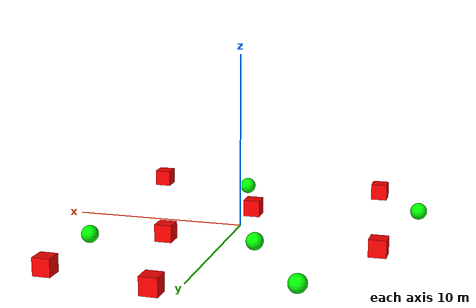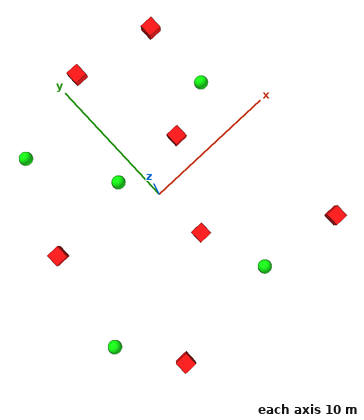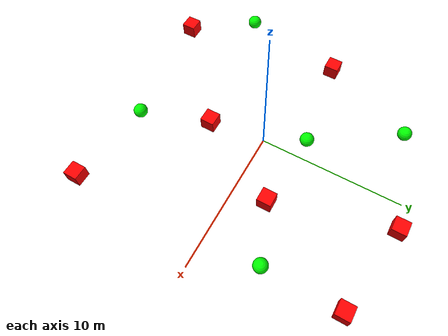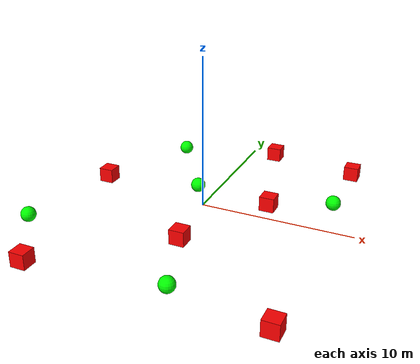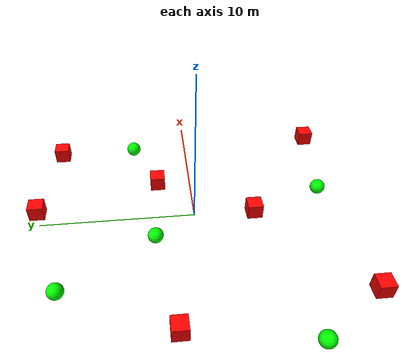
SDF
<?xml version='1.0'?>
<sdf version='1.7'>
  <model name='obastacle'>
    <link name='link_0'>
      <inertial>
        <mass>1</mass>
        <inertia>
          <ixx>0.166667</ixx>
          <ixy>0</ixy>
          <ixz>0</ixz>
          <iyy>0.166667</iyy>
          <iyz>0</iyz>
          <izz>0.166667</izz>
        </inertia>
        <pose>0 0 0 0 -0 0</pose>
      </inertial>
      <pose>7.79193 9.30187 0 0 -0 0</pose>
      <gravity>1</gravity>
      <self_collide>0</self_collide>
      <kinematic>0</kinematic>
      <enable_wind>0</enable_wind>
      <visual name='visual'>
        <pose>0 0 0 0 -0 0</pose>
        <geometry>
          <box>
            <size>1 1 1</size>
          </box>
        </geometry>
        <material>
          <lighting>1</lighting>
          <script>
            <uri>file://media/materials/scripts/gazebo.material</uri>
            <name>Gazebo/Grey</name>
          </script>
          <shader type='pixel'>
            <normal_map>__default__</normal_map>
          </shader>
          <ambient>1 0 0 0</ambient>
          <diffuse>0.7 0.7 0.7 1</diffuse>
          <specular>0.01 0.01 0.01 1</specular>
          <emissive>0 0 0 1</emissive>
        </material>
        <transparency>0</transparency>
        <cast_shadows>1</cast_shadows>
      </visual>
      <collision name='collision'>
        <laser_retro>0</laser_retro>
        <max_contacts>10</max_contacts>
        <pose>0 0 0 0 -0 0</pose>
        <geometry>
          <box>
            <size>1 1 1</size>
          </box>
        </geometry>
        <surface>
          <friction>
            <ode>
              <mu>1</mu>
              <mu2>1</mu2>
              <fdir1>0 0 0</fdir1>
              <slip1>0</slip1>
              <slip2>0</slip2>
            </ode>
            <torsional>
              <coefficient>1</coefficient>
              <patch_radius>0</patch_radius>
              <surface_radius>0</surface_radius>
              <use_patch_radius>1</use_patch_radius>
              <ode>
                <slip>0</slip>
              </ode>
            </torsional>
          </friction>
          <bounce>
            <restitution_coefficient>0</restitution_coefficient>
            <threshold>1e+06</threshold>
          </bounce>
          <contact>
            <collide_without_contact>0</collide_without_contact>
            <collide_without_contact_bitmask>1</collide_without_contact_bitmask>
            <collide_bitmask>1</collide_bitmask>
            <ode>
              <soft_cfm>0</soft_cfm>
              <soft_erp>0.2</soft_erp>
              <kp>1e+13</kp>
              <kd>1</kd>
              <max_vel>0.01</max_vel>
              <min_depth>0</min_depth>
            </ode>
            <bullet>
              <split_impulse>1</split_impulse>
              <split_impulse_penetration_threshold>-0.01</split_impulse_penetration_threshold>
              <soft_cfm>0</soft_cfm>
              <soft_erp>0.2</soft_erp>
              <kp>1e+13</kp>
              <kd>1</kd>
            </bullet>
          </contact>
        </surface>
      </collision>
    </link>
    <link name='link_0_clone'>
      <inertial>
        <mass>1</mass>
        <inertia>
          <ixx>0.166667</ixx>
          <ixy>0</ixy>
          <ixz>0</ixz>
          <iyy>0.166667</iyy>
          <iyz>0</iyz>
          <izz>0.166667</izz>
        </inertia>
        <pose>0 0 0 0 -0 0</pose>
      </inertial>
      <pose>1.53918 10.4076 0 0 -0 0</pose>
      <gravity>1</gravity>
      <self_collide>0</self_collide>
      <kinematic>0</kinematic>
      <enable_wind>0</enable_wind>
      <visual name='visual'>
        <pose>0 0 0 0 -0 0</pose>
        <geometry>
          <box>
            <size>1 1 1</size>
          </box>
        </geometry>
        <material>
          <lighting>1</lighting>
          <script>
            <uri>file://media/materials/scripts/gazebo.material</uri>
            <name>Gazebo/Grey</name>
          </script>
          <shader type='pixel'>
            <normal_map>__default__</normal_map>
          </shader>
          <ambient>1 0 0 0</ambient>
          <diffuse>0.7 0.7 0.7 1</diffuse>
          <specular>0.01 0.01 0.01 1</specular>
          <emissive>0 0 0 1</emissive>
        </material>
        <transparency>0</transparency>
        <cast_shadows>1</cast_shadows>
      </visual>
      <collision name='collision'>
        <laser_retro>0</laser_retro>
        <max_contacts>10</max_contacts>
        <pose>0 0 0 0 -0 0</pose>
        <geometry>
          <box>
            <size>1 1 1</size>
          </box>
        </geometry>
        <surface>
          <friction>
            <ode>
              <mu>1</mu>
              <mu2>1</mu2>
              <fdir1>0 0 0</fdir1>
              <slip1>0</slip1>
              <slip2>0</slip2>
            </ode>
            <torsional>
              <coefficient>1</coefficient>
              <patch_radius>0</patch_radius>
              <surface_radius>0</surface_radius>
              <use_patch_radius>1</use_patch_radius>
              <ode>
                <slip>0</slip>
              </ode>
            </torsional>
          </friction>
          <bounce>
            <restitution_coefficient>0</restitution_coefficient>
            <threshold>1e+06</threshold>
          </bounce>
          <contact>
            <collide_without_contact>0</collide_without_contact>
            <collide_without_contact_bitmask>1</collide_without_contact_bitmask>
            <collide_bitmask>1</collide_bitmask>
            <ode>
              <soft_cfm>0</soft_cfm>
              <soft_erp>0.2</soft_erp>
              <kp>1e+13</kp>
              <kd>1</kd>
              <max_vel>0.01</max_vel>
              <min_depth>0</min_depth>
            </ode>
            <bullet>
              <split_impulse>1</split_impulse>
              <split_impulse_penetration_threshold>-0.01</split_impulse_penetration_threshold>
              <soft_cfm>0</soft_cfm>
              <soft_erp>0.2</soft_erp>
              <kp>1e+13</kp>
              <kd>1</kd>
            </bullet>
          </contact>
        </surface>
      </collision>
    </link>
    <link name='link_0_clone_0'>
      <inertial>
        <mass>1</mass>
        <inertia>
          <ixx>0.166667</ixx>
          <ixy>0</ixy>
          <ixz>0</ixz>
          <iyy>0.166667</iyy>
          <iyz>0</iyz>
          <izz>0.166667</izz>
        </inertia>
        <pose>0 0 0 0 -0 0</pose>
      </inertial>
      <pose>-6.70834 -10.0281 0 0 -0 0</pose>
      <gravity>1</gravity>
      <self_collide>0</self_collide>
      <kinematic>0</kinematic>
      <enable_wind>0</enable_wind>
      <visual name='visual'>
        <pose>0 0 0 0 -0 0</pose>
        <geometry>
          <box>
            <size>1 1 1</size>
          </box>
        </geometry>
        <material>
          <lighting>1</lighting>
          <script>
            <uri>file://media/materials/scripts/gazebo.material</uri>
            <name>Gazebo/Grey</name>
          </script>
          <shader type='pixel'>
            <normal_map>__default__</normal_map>
          </shader>
          <ambient>1 0 0 0</ambient>
          <diffuse>0.7 0.7 0.7 1</diffuse>
          <specular>0.01 0.01 0.01 1</specular>
          <emissive>0 0 0 1</emissive>
        </material>
        <transparency>0</transparency>
        <cast_shadows>1</cast_shadows>
      </visual>
      <collision name='collision'>
        <laser_retro>0</laser_retro>
        <max_contacts>10</max_contacts>
        <pose>0 0 0 0 -0 0</pose>
        <geometry>
          <box>
            <size>1 1 1</size>
          </box>
        </geometry>
        <surface>
          <friction>
            <ode>
              <mu>1</mu>
              <mu2>1</mu2>
              <fdir1>0 0 0</fdir1>
              <slip1>0</slip1>
              <slip2>0</slip2>
            </ode>
            <torsional>
              <coefficient>1</coefficient>
              <patch_radius>0</patch_radius>
              <surface_radius>0</surface_radius>
              <use_patch_radius>1</use_patch_radius>
              <ode>
                <slip>0</slip>
              </ode>
            </torsional>
          </friction>
          <bounce>
            <restitution_coefficient>0</restitution_coefficient>
            <threshold>1e+06</threshold>
          </bounce>
          <contact>
            <collide_without_contact>0</collide_without_contact>
            <collide_without_contact_bitmask>1</collide_without_contact_bitmask>
            <collide_bitmask>1</collide_bitmask>
            <ode>
              <soft_cfm>0</soft_cfm>
              <soft_erp>0.2</soft_erp>
              <kp>1e+13</kp>
              <kd>1</kd>
              <max_vel>0.01</max_vel>
              <min_depth>0</min_depth>
            </ode>
            <bullet>
              <split_impulse>1</split_impulse>
              <split_impulse_penetration_threshold>-0.01</split_impulse_penetration_threshold>
              <soft_cfm>0</soft_cfm>
              <soft_erp>0.2</soft_erp>
              <kp>1e+13</kp>
              <kd>1</kd>
            </bullet>
          </contact>
        </surface>
      </collision>
    </link>
    <link name='link_0_clone_1'>
      <inertial>
        <mass>1</mass>
        <inertia>
          <ixx>0.166667</ixx>
          <ixy>0</ixy>
          <ixz>0</ixz>
          <iyy>0.166667</iyy>
          <iyz>0</iyz>
          <izz>0.166667</izz>
        </inertia>
        <pose>0 0 0 0 -0 0</pose>
      </inertial>
      <pose>8.23102 -9.72383 0 0 -0 0</pose>
      <gravity>1</gravity>
      <self_collide>0</self_collide>
      <kinematic>0</kinematic>
      <enable_wind>0</enable_wind>
      <visual name='visual'>
        <pose>0 0 0 0 -0 0</pose>
        <geometry>
          <box>
            <size>1 1 1</size>
          </box>
        </geometry>
        <material>
          <lighting>1</lighting>
          <script>
            <uri>file://media/materials/scripts/gazebo.material</uri>
            <name>Gazebo/Grey</name>
          </script>
          <shader type='pixel'>
            <normal_map>__default__</normal_map>
          </shader>
          <ambient>1 0 0 0</ambient>
          <diffuse>0.7 0.7 0.7 1</diffuse>
          <specular>0.01 0.01 0.01 1</specular>
          <emissive>0 0 0 1</emissive>
        </material>
        <transparency>0</transparency>
        <cast_shadows>1</cast_shadows>
      </visual>
      <collision name='collision'>
        <laser_retro>0</laser_retro>
        <max_contacts>10</max_contacts>
        <pose>0 0 0 0 -0 0</pose>
        <geometry>
          <box>
            <size>1 1 1</size>
          </box>
        </geometry>
        <surface>
          <friction>
            <ode>
              <mu>1</mu>
              <mu2>1</mu2>
              <fdir1>0 0 0</fdir1>
              <slip1>0</slip1>
              <slip2>0</slip2>
            </ode>
            <torsional>
              <coefficient>1</coefficient>
              <patch_radius>0</patch_radius>
              <surface_radius>0</surface_radius>
              <use_patch_radius>1</use_patch_radius>
              <ode>
                <slip>0</slip>
              </ode>
            </torsional>
          </friction>
          <bounce>
            <restitution_coefficient>0</restitution_coefficient>
            <threshold>1e+06</threshold>
          </bounce>
          <contact>
            <collide_without_contact>0</collide_without_contact>
            <collide_without_contact_bitmask>1</collide_without_contact_bitmask>
            <collide_bitmask>1</collide_bitmask>
            <ode>
              <soft_cfm>0</soft_cfm>
              <soft_erp>0.2</soft_erp>
              <kp>1e+13</kp>
              <kd>1</kd>
              <max_vel>0.01</max_vel>
              <min_depth>0</min_depth>
            </ode>
            <bullet>
              <split_impulse>1</split_impulse>
              <split_impulse_penetration_threshold>-0.01</split_impulse_penetration_threshold>
              <soft_cfm>0</soft_cfm>
              <soft_erp>0.2</soft_erp>
              <kp>1e+13</kp>
              <kd>1</kd>
            </bullet>
          </contact>
        </surface>
      </collision>
    </link>
    <link name='link_0_clone_2'>
      <inertial>
        <mass>1</mass>
        <inertia>
          <ixx>0.166667</ixx>
          <ixy>0</ixy>
          <ixz>0</ixz>
          <iyy>0.166667</iyy>
          <iyz>0</iyz>
          <izz>0.166667</izz>
        </inertia>
        <pose>0 0 0 0 -0 0</pose>
      </inertial>
      <pose>-8.26062 1.66371 0 0 -0 0</pose>
      <gravity>1</gravity>
      <self_collide>0</self_collide>
      <kinematic>0</kinematic>
      <enable_wind>0</enable_wind>
      <visual name='visual'>
        <pose>0 0 0 0 -0 0</pose>
        <geometry>
          <box>
            <size>1 1 1</size>
          </box>
        </geometry>
        <material>
          <lighting>1</lighting>
          <script>
            <uri>file://media/materials/scripts/gazebo.material</uri>
            <name>Gazebo/Grey</name>
          </script>
          <shader type='pixel'>
            <normal_map>__default__</normal_map>
          </shader>
          <ambient>1 0 0 0</ambient>
          <diffuse>0.7 0.7 0.7 1</diffuse>
          <specular>0.01 0.01 0.01 1</specular>
          <emissive>0 0 0 1</emissive>
        </material>
        <transparency>0</transparency>
        <cast_shadows>1</cast_shadows>
      </visual>
      <collision name='collision'>
        <laser_retro>0</laser_retro>
        <max_contacts>10</max_contacts>
        <pose>0 0 0 0 -0 0</pose>
        <geometry>
          <box>
            <size>1 1 1</size>
          </box>
        </geometry>
        <surface>
          <friction>
            <ode>
              <mu>1</mu>
              <mu2>1</mu2>
              <fdir1>0 0 0</fdir1>
              <slip1>0</slip1>
              <slip2>0</slip2>
            </ode>
            <torsional>
              <coefficient>1</coefficient>
              <patch_radius>0</patch_radius>
              <surface_radius>0</surface_radius>
              <use_patch_radius>1</use_patch_radius>
              <ode>
                <slip>0</slip>
              </ode>
            </torsional>
          </friction>
          <bounce>
            <restitution_coefficient>0</restitution_coefficient>
            <threshold>1e+06</threshold>
          </bounce>
          <contact>
            <collide_without_contact>0</collide_without_contact>
            <collide_without_contact_bitmask>1</collide_without_contact_bitmask>
            <collide_bitmask>1</collide_bitmask>
            <ode>
              <soft_cfm>0</soft_cfm>
              <soft_erp>0.2</soft_erp>
              <kp>1e+13</kp>
              <kd>1</kd>
              <max_vel>0.01</max_vel>
              <min_depth>0</min_depth>
            </ode>
            <bullet>
              <split_impulse>1</split_impulse>
              <split_impulse_penetration_threshold>-0.01</split_impulse_penetration_threshold>
              <soft_cfm>0</soft_cfm>
              <soft_erp>0.2</soft_erp>
              <kp>1e+13</kp>
              <kd>1</kd>
            </bullet>
          </contact>
        </surface>
      </collision>
    </link>
    <link name='link_0_clone_3'>
      <inertial>
        <mass>1</mass>
        <inertia>
          <ixx>0.166667</ixx>
          <ixy>0</ixy>
          <ixz>0</ixz>
          <iyy>0.166667</iyy>
          <iyz>0</iyz>
          <izz>0.166667</izz>
        </inertia>
        <pose>0 0 0 0 -0 0</pose>
      </inertial>
      <pose>3.80299 2.24544 0 0 -0 0</pose>
      <gravity>1</gravity>
      <self_collide>0</self_collide>
      <kinematic>0</kinematic>
      <enable_wind>0</enable_wind>
      <visual name='visual'>
        <pose>0 0 0 0 -0 0</pose>
        <geometry>
          <box>
            <size>1 1 1</size>
          </box>
        </geometry>
        <material>
          <lighting>1</lighting>
          <script>
            <uri>file://media/materials/scripts/gazebo.material</uri>
            <name>Gazebo/Grey</name>
          </script>
          <shader type='pixel'>
            <normal_map>__default__</normal_map>
          </shader>
          <ambient>1 0 0 0</ambient>
          <diffuse>0.7 0.7 0.7 1</diffuse>
          <specular>0.01 0.01 0.01 1</specular>
          <emissive>0 0 0 1</emissive>
        </material>
        <transparency>0</transparency>
        <cast_shadows>1</cast_shadows>
      </visual>
      <collision name='collision'>
        <laser_retro>0</laser_retro>
        <max_contacts>10</max_contacts>
        <pose>0 0 0 0 -0 0</pose>
        <geometry>
          <box>
            <size>1 1 1</size>
          </box>
        </geometry>
        <surface>
          <friction>
            <ode>
              <mu>1</mu>
              <mu2>1</mu2>
              <fdir1>0 0 0</fdir1>
              <slip1>0</slip1>
              <slip2>0</slip2>
            </ode>
            <torsional>
              <coefficient>1</coefficient>
              <patch_radius>0</patch_radius>
              <surface_radius>0</surface_radius>
              <use_patch_radius>1</use_patch_radius>
              <ode>
                <slip>0</slip>
              </ode>
            </torsional>
          </friction>
          <bounce>
            <restitution_coefficient>0</restitution_coefficient>
            <threshold>1e+06</threshold>
          </bounce>
          <contact>
            <collide_without_contact>0</collide_without_contact>
            <collide_without_contact_bitmask>1</collide_without_contact_bitmask>
            <collide_bitmask>1</collide_bitmask>
            <ode>
              <soft_cfm>0</soft_cfm>
              <soft_erp>0.2</soft_erp>
              <kp>1e+13</kp>
              <kd>1</kd>
              <max_vel>0.01</max_vel>
              <min_depth>0</min_depth>
            </ode>
            <bullet>
              <split_impulse>1</split_impulse>
              <split_impulse_penetration_threshold>-0.01</split_impulse_penetration_threshold>
              <soft_cfm>0</soft_cfm>
              <soft_erp>0.2</soft_erp>
              <kp>1e+13</kp>
              <kd>1</kd>
            </bullet>
          </contact>
        </surface>
      </collision>
    </link>
    <link name='link_0_clone_4'>
      <inertial>
        <mass>1</mass>
        <inertia>
          <ixx>0.166667</ixx>
          <ixy>0</ixy>
          <ixz>0</ixz>
          <iyy>0.166667</iyy>
          <iyz>0</iyz>
          <izz>0.166667</izz>
        </inertia>
        <pose>0 0 0 0 -0 0</pose>
      </inertial>
      <pose>0.324711 -4.05701 0 0 -0 0</pose>
      <gravity>1</gravity>
      <self_collide>0</self_collide>
      <kinematic>0</kinematic>
      <enable_wind>0</enable_wind>
      <visual name='visual'>
        <pose>0 0 0 0 -0 0</pose>
        <geometry>
          <box>
            <size>1 1 1</size>
          </box>
        </geometry>
        <material>
          <lighting>1</lighting>
          <script>
            <uri>file://media/materials/scripts/gazebo.material</uri>
            <name>Gazebo/Grey</name>
          </script>
          <shader type='pixel'>
            <normal_map>__default__</normal_map>
          </shader>
          <ambient>1 0 0 0</ambient>
          <diffuse>0.7 0.7 0.7 1</diffuse>
          <specular>0.01 0.01 0.01 1</specular>
          <emissive>0 0 0 1</emissive>
        </material>
        <transparency>0</transparency>
        <cast_shadows>1</cast_shadows>
      </visual>
      <collision name='collision'>
        <laser_retro>0</laser_retro>
        <max_contacts>10</max_contacts>
        <pose>0 0 0 0 -0 0</pose>
        <geometry>
          <box>
            <size>1 1 1</size>
          </box>
        </geometry>
        <surface>
          <friction>
            <ode>
              <mu>1</mu>
              <mu2>1</mu2>
              <fdir1>0 0 0</fdir1>
              <slip1>0</slip1>
              <slip2>0</slip2>
            </ode>
            <torsional>
              <coefficient>1</coefficient>
              <patch_radius>0</patch_radius>
              <surface_radius>0</surface_radius>
              <use_patch_radius>1</use_patch_radius>
              <ode>
                <slip>0</slip>
              </ode>
            </torsional>
          </friction>
          <bounce>
            <restitution_coefficient>0</restitution_coefficient>
            <threshold>1e+06</threshold>
          </bounce>
          <contact>
            <collide_without_contact>0</collide_without_contact>
            <collide_without_contact_bitmask>1</collide_without_contact_bitmask>
            <collide_bitmask>1</collide_bitmask>
            <ode>
              <soft_cfm>0</soft_cfm>
              <soft_erp>0.2</soft_erp>
              <kp>1e+13</kp>
              <kd>1</kd>
              <max_vel>0.01</max_vel>
              <min_depth>0</min_depth>
            </ode>
            <bullet>
              <split_impulse>1</split_impulse>
              <split_impulse_penetration_threshold>-0.01</split_impulse_penetration_threshold>
              <soft_cfm>0</soft_cfm>
              <soft_erp>0.2</soft_erp>
              <kp>1e+13</kp>
              <kd>1</kd>
            </bullet>
          </contact>
        </surface>
      </collision>
    </link>
    <link name='link_1'>
      <inertial>
        <mass>1</mass>
        <inertia>
          <ixx>0.1</ixx>
          <ixy>0</ixy>
          <ixz>0</ixz>
          <iyy>0.1</iyy>
          <iyz>0</iyz>
          <izz>0.1</izz>
        </inertia>
        <pose>0 0 0 0 -0 0</pose>
      </inertial>
      <pose>-1.55379 2.62052 0 0 -0 0</pose>
      <gravity>1</gravity>
      <self_collide>0</self_collide>
      <kinematic>0</kinematic>
      <enable_wind>0</enable_wind>
      <visual name='visual'>
        <pose>0 0 0 0 -0 0</pose>
        <geometry>
          <sphere>
            <radius>0.5</radius>
          </sphere>
        </geometry>
        <material>
          <lighting>1</lighting>
          <script>
            <uri>file://media/materials/scripts/gazebo.material</uri>
            <name>Gazebo/Grey</name>
          </script>
          <shader type='pixel'>
            <normal_map>__default__</normal_map>
          </shader>
          <ambient>0 1 0 0</ambient>
          <diffuse>0.7 0.7 0.7 1</diffuse>
          <specular>0.01 0.01 0.01 1</specular>
          <emissive>0 0 0 1</emissive>
        </material>
        <transparency>0</transparency>
        <cast_shadows>1</cast_shadows>
      </visual>
      <collision name='collision'>
        <laser_retro>0</laser_retro>
        <max_contacts>10</max_contacts>
        <pose>0 0 0 0 -0 0</pose>
        <geometry>
          <sphere>
            <radius>0.5</radius>
          </sphere>
        </geometry>
        <surface>
          <friction>
            <ode>
              <mu>1</mu>
              <mu2>1</mu2>
              <fdir1>0 0 0</fdir1>
              <slip1>0</slip1>
              <slip2>0</slip2>
            </ode>
            <torsional>
              <coefficient>1</coefficient>
              <patch_radius>0</patch_radius>
              <surface_radius>0</surface_radius>
              <use_patch_radius>1</use_patch_radius>
              <ode>
                <slip>0</slip>
              </ode>
            </torsional>
          </friction>
          <bounce>
            <restitution_coefficient>0</restitution_coefficient>
            <threshold>1e+06</threshold>
          </bounce>
          <contact>
            <collide_without_contact>0</collide_without_contact>
            <collide_without_contact_bitmask>1</collide_without_contact_bitmask>
            <collide_bitmask>1</collide_bitmask>
            <ode>
              <soft_cfm>0</soft_cfm>
              <soft_erp>0.2</soft_erp>
              <kp>1e+13</kp>
              <kd>1</kd>
              <max_vel>0.01</max_vel>
              <min_depth>0</min_depth>
            </ode>
            <bullet>
              <split_impulse>1</split_impulse>
              <split_impulse_penetration_threshold>-0.01</split_impulse_penetration_threshold>
              <soft_cfm>0</soft_cfm>
              <soft_erp>0.2</soft_erp>
              <kp>1e+13</kp>
              <kd>1</kd>
            </bullet>
          </contact>
        </surface>
      </collision>
    </link>
    <link name='link_1_clone'>
      <inertial>
        <mass>1</mass>
        <inertia>
          <ixx>0.1</ixx>
          <ixy>0</ixy>
          <ixz>0</ixz>
          <iyy>0.1</iyy>
          <iyz>0</iyz>
          <izz>0.1</izz>
        </inertia>
        <pose>0 0 0 0 -0 0</pose>
      </inertial>
      <pose>-5.27947 8.41706 0 0 -0 0</pose>
      <gravity>1</gravity>
      <self_collide>0</self_collide>
      <kinematic>0</kinematic>
      <enable_wind>0</enable_wind>
      <visual name='visual'>
        <pose>0 0 0 0 -0 0</pose>
        <geometry>
          <sphere>
            <radius>0.5</radius>
          </sphere>
        </geometry>
        <material>
          <lighting>1</lighting>
          <script>
            <uri>file://media/materials/scripts/gazebo.material</uri>
            <name>Gazebo/Grey</name>
          </script>
          <shader type='pixel'>
            <normal_map>__default__</normal_map>
          </shader>
          <ambient>0 1 0 0</ambient>
          <diffuse>0.7 0.7 0.7 1</diffuse>
          <specular>0.01 0.01 0.01 1</specular>
          <emissive>0 0 0 1</emissive>
        </material>
        <transparency>0</transparency>
        <cast_shadows>1</cast_shadows>
      </visual>
      <collision name='collision'>
        <laser_retro>0</laser_retro>
        <max_contacts>10</max_contacts>
        <pose>0 0 0 0 -0 0</pose>
        <geometry>
          <sphere>
            <radius>0.5</radius>
          </sphere>
        </geometry>
        <surface>
          <friction>
            <ode>
              <mu>1</mu>
              <mu2>1</mu2>
              <fdir1>0 0 0</fdir1>
              <slip1>0</slip1>
              <slip2>0</slip2>
            </ode>
            <torsional>
              <coefficient>1</coefficient>
              <patch_radius>0</patch_radius>
              <surface_radius>0</surface_radius>
              <use_patch_radius>1</use_patch_radius>
              <ode>
                <slip>0</slip>
              </ode>
            </torsional>
          </friction>
          <bounce>
            <restitution_coefficient>0</restitution_coefficient>
            <threshold>1e+06</threshold>
          </bounce>
          <contact>
            <collide_without_contact>0</collide_without_contact>
            <collide_without_contact_bitmask>1</collide_without_contact_bitmask>
            <collide_bitmask>1</collide_bitmask>
            <ode>
              <soft_cfm>0</soft_cfm>
              <soft_erp>0.2</soft_erp>
              <kp>1e+13</kp>
              <kd>1</kd>
              <max_vel>0.01</max_vel>
              <min_depth>0</min_depth>
            </ode>
            <bullet>
              <split_impulse>1</split_impulse>
              <split_impulse_penetration_threshold>-0.01</split_impulse_penetration_threshold>
              <soft_cfm>0</soft_cfm>
              <soft_erp>0.2</soft_erp>
              <kp>1e+13</kp>
              <kd>1</kd>
            </bullet>
          </contact>
        </surface>
      </collision>
    </link>
    <link name='link_1_clone_0'>
      <inertial>
        <mass>1</mass>
        <inertia>
          <ixx>0.1</ixx>
          <ixy>0</ixy>
          <ixz>0</ixz>
          <iyy>0.1</iyy>
          <iyz>0</iyz>
          <izz>0.1</izz>
        </inertia>
        <pose>0 0 0 0 -0 0</pose>
      </inertial>
      <pose>-9.65509 -5.8164 0 0 -0 0</pose>
      <gravity>1</gravity>
      <self_collide>0</self_collide>
      <kinematic>0</kinematic>
      <enable_wind>0</enable_wind>
      <visual name='visual'>
        <pose>0 0 0 0 -0 0</pose>
        <geometry>
          <sphere>
            <radius>0.5</radius>
          </sphere>
        </geometry>
        <material>
          <lighting>1</lighting>
          <script>
            <uri>file://media/materials/scripts/gazebo.material</uri>
            <name>Gazebo/Grey</name>
          </script>
          <shader type='pixel'>
            <normal_map>__default__</normal_map>
          </shader>
          <ambient>0 1 0 0</ambient>
          <diffuse>0.7 0.7 0.7 1</diffuse>
          <specular>0.01 0.01 0.01 1</specular>
          <emissive>0 0 0 1</emissive>
        </material>
        <transparency>0</transparency>
        <cast_shadows>1</cast_shadows>
      </visual>
      <collision name='collision'>
        <laser_retro>0</laser_retro>
        <max_contacts>10</max_contacts>
        <pose>0 0 0 0 -0 0</pose>
        <geometry>
          <sphere>
            <radius>0.5</radius>
          </sphere>
        </geometry>
        <surface>
          <friction>
            <ode>
              <mu>1</mu>
              <mu2>1</mu2>
              <fdir1>0 0 0</fdir1>
              <slip1>0</slip1>
              <slip2>0</slip2>
            </ode>
            <torsional>
              <coefficient>1</coefficient>
              <patch_radius>0</patch_radius>
              <surface_radius>0</surface_radius>
              <use_patch_radius>1</use_patch_radius>
              <ode>
                <slip>0</slip>
              </ode>
            </torsional>
          </friction>
          <bounce>
            <restitution_coefficient>0</restitution_coefficient>
            <threshold>1e+06</threshold>
          </bounce>
          <contact>
            <collide_without_contact>0</collide_without_contact>
            <collide_without_contact_bitmask>1</collide_without_contact_bitmask>
            <collide_bitmask>1</collide_bitmask>
            <ode>
              <soft_cfm>0</soft_cfm>
              <soft_erp>0.2</soft_erp>
              <kp>1e+13</kp>
              <kd>1</kd>
              <max_vel>0.01</max_vel>
              <min_depth>0</min_depth>
            </ode>
            <bullet>
              <split_impulse>1</split_impulse>
              <split_impulse_penetration_threshold>-0.01</split_impulse_penetration_threshold>
              <soft_cfm>0</soft_cfm>
              <soft_erp>0.2</soft_erp>
              <kp>1e+13</kp>
              <kd>1</kd>
            </bullet>
          </contact>
        </surface>
      </collision>
    </link>
    <link name='link_1_clone_1'>
      <inertial>
        <mass>1</mass>
        <inertia>
          <ixx>0.1</ixx>
          <ixy>0</ixy>
          <ixz>0</ixz>
          <iyy>0.1</iyy>
          <iyz>0</iyz>
          <izz>0.1</izz>
        </inertia>
        <pose>0 0 0 0 -0 0</pose>
      </inertial>
      <pose>2.01618 -8.9188 0 0 -0 0</pose>
      <gravity>1</gravity>
      <self_collide>0</self_collide>
      <kinematic>0</kinematic>
      <enable_wind>0</enable_wind>
      <visual name='visual'>
        <pose>0 0 0 0 -0 0</pose>
        <geometry>
          <sphere>
            <radius>0.5</radius>
          </sphere>
        </geometry>
        <material>
          <lighting>1</lighting>
          <script>
            <uri>file://media/materials/scripts/gazebo.material</uri>
            <name>Gazebo/Grey</name>
          </script>
          <shader type='pixel'>
            <normal_map>__default__</normal_map>
          </shader>
          <ambient>0 1 0 0</ambient>
          <diffuse>0.7 0.7 0.7 1</diffuse>
          <specular>0.01 0.01 0.01 1</specular>
          <emissive>0 0 0 1</emissive>
        </material>
        <transparency>0</transparency>
        <cast_shadows>1</cast_shadows>
      </visual>
      <collision name='collision'>
        <laser_retro>0</laser_retro>
        <max_contacts>10</max_contacts>
        <pose>0 0 0 0 -0 0</pose>
        <geometry>
          <sphere>
            <radius>0.5</radius>
          </sphere>
        </geometry>
        <surface>
          <friction>
            <ode>
              <mu>1</mu>
              <mu2>1</mu2>
              <fdir1>0 0 0</fdir1>
              <slip1>0</slip1>
              <slip2>0</slip2>
            </ode>
            <torsional>
              <coefficient>1</coefficient>
              <patch_radius>0</patch_radius>
              <surface_radius>0</surface_radius>
              <use_patch_radius>1</use_patch_radius>
              <ode>
                <slip>0</slip>
              </ode>
            </torsional>
          </friction>
          <bounce>
            <restitution_coefficient>0</restitution_coefficient>
            <threshold>1e+06</threshold>
          </bounce>
          <contact>
            <collide_without_contact>0</collide_without_contact>
            <collide_without_contact_bitmask>1</collide_without_contact_bitmask>
            <collide_bitmask>1</collide_bitmask>
            <ode>
              <soft_cfm>0</soft_cfm>
              <soft_erp>0.2</soft_erp>
              <kp>1e+13</kp>
              <kd>1</kd>
              <max_vel>0.01</max_vel>
              <min_depth>0</min_depth>
            </ode>
            <bullet>
              <split_impulse>1</split_impulse>
              <split_impulse_penetration_threshold>-0.01</split_impulse_penetration_threshold>
              <soft_cfm>0</soft_cfm>
              <soft_erp>0.2</soft_erp>
              <kp>1e+13</kp>
              <kd>1</kd>
            </bullet>
          </contact>
        </surface>
      </collision>
    </link>
    <link name='link_1_clone_2'>
      <inertial>
        <mass>1</mass>
        <inertia>
          <ixx>0.1</ixx>
          <ixy>0</ixy>
          <ixz>0</ixz>
          <iyy>0.1</iyy>
          <iyz>0</iyz>
          <izz>0.1</izz>
        </inertia>
        <pose>0 0 0 0 -0 0</pose>
      </inertial>
      <pose>7.7513 3.88792 0 0 -0 0</pose>
      <gravity>1</gravity>
      <self_collide>0</self_collide>
      <kinematic>0</kinematic>
      <enable_wind>0</enable_wind>
      <visual name='visual'>
        <pose>0 0 0 0 -0 0</pose>
        <geometry>
          <sphere>
            <radius>0.5</radius>
          </sphere>
        </geometry>
        <material>
          <lighting>1</lighting>
          <script>
            <uri>file://media/materials/scripts/gazebo.material</uri>
            <name>Gazebo/Grey</name>
          </script>
          <shader type='pixel'>
            <normal_map>__default__</normal_map>
          </shader>
          <ambient>0 1 0 0</ambient>
          <diffuse>0.7 0.7 0.7 1</diffuse>
          <specular>0.01 0.01 0.01 1</specular>
          <emissive>0 0 0 1</emissive>
        </material>
        <transparency>0</transparency>
        <cast_shadows>1</cast_shadows>
      </visual>
      <collision name='collision'>
        <laser_retro>0</laser_retro>
        <max_contacts>10</max_contacts>
        <pose>0 0 0 0 -0 0</pose>
        <geometry>
          <sphere>
            <radius>0.5</radius>
          </sphere>
        </geometry>
        <surface>
          <friction>
            <ode>
              <mu>1</mu>
              <mu2>1</mu2>
              <fdir1>0 0 0</fdir1>
              <slip1>0</slip1>
              <slip2>0</slip2>
            </ode>
            <torsional>
              <coefficient>1</coefficient>
              <patch_radius>0</patch_radius>
              <surface_radius>0</surface_radius>
              <use_patch_radius>1</use_patch_radius>
              <ode>
                <slip>0</slip>
              </ode>
            </torsional>
          </friction>
          <bounce>
            <restitution_coefficient>0</restitution_coefficient>
            <threshold>1e+06</threshold>
          </bounce>
          <contact>
            <collide_without_contact>0</collide_without_contact>
            <collide_without_contact_bitmask>1</collide_without_contact_bitmask>
            <collide_bitmask>1</collide_bitmask>
            <ode>
              <soft_cfm>0</soft_cfm>
              <soft_erp>0.2</soft_erp>
              <kp>1e+13</kp>
              <kd>1</kd>
              <max_vel>0.01</max_vel>
              <min_depth>0</min_depth>
            </ode>
            <bullet>
              <split_impulse>1</split_impulse>
              <split_impulse_penetration_threshold>-0.01</split_impulse_penetration_threshold>
              <soft_cfm>0</soft_cfm>
              <soft_erp>0.2</soft_erp>
              <kp>1e+13</kp>
              <kd>1</kd>
            </bullet>
          </contact>
        </surface>
      </collision>
    </link>
    <static>0</static>
    <allow_auto_disable>1</allow_auto_disable>
  </model>
</sdf>
